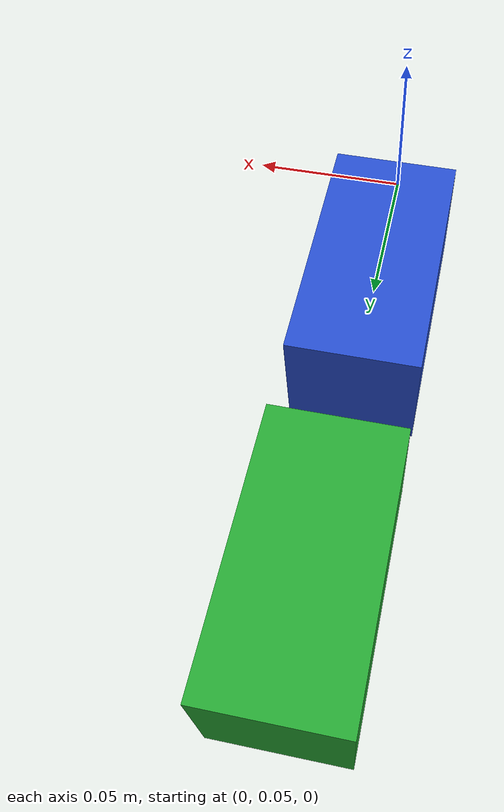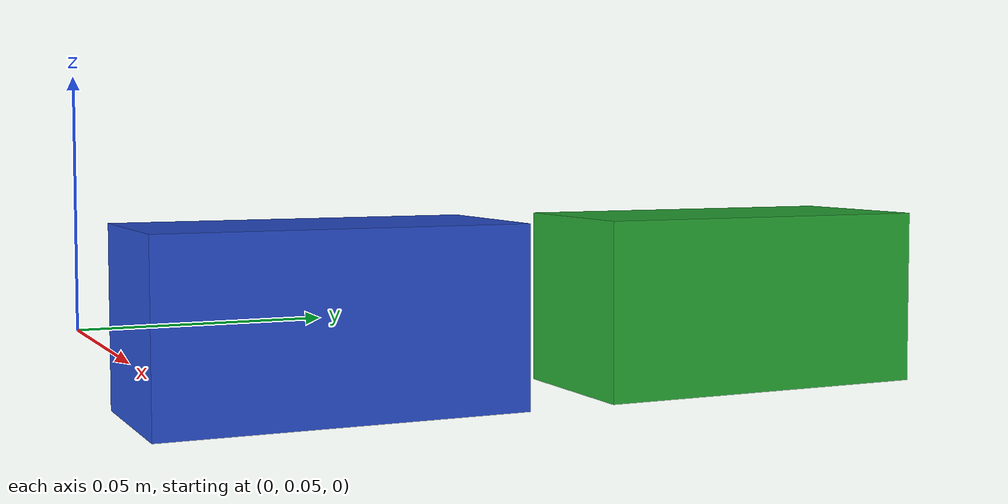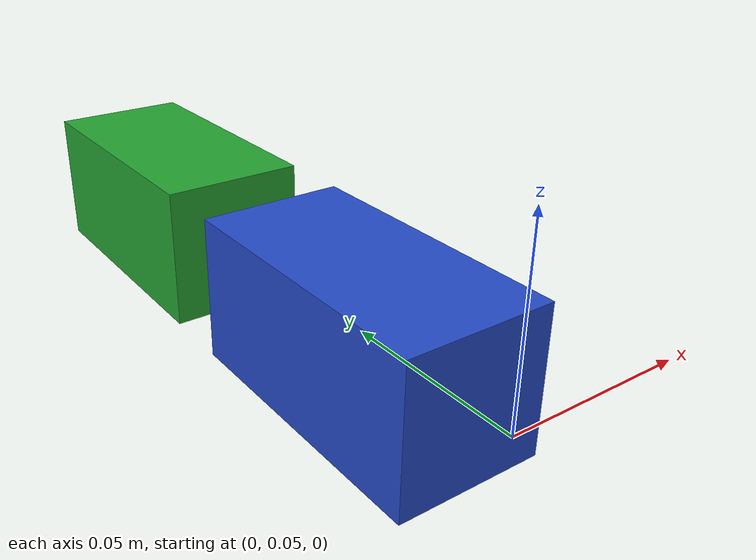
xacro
<?xml version="1.0"?>
<robot xmlns:xacro="http://www.ros.org/wiki/xacro" name="simple_box">

    <link name="object_base_link">
    </link>

    <joint name="object_base_joint1" type="fixed">
        <parent link="object_base_link"/>
        <child link="object_link1"/>
        <axis xyz="0 0 1" />
        <origin xyz="0 00.1 0" rpy="0 0 0"/>
    </joint>

   <link name="object_link1">
     <inertial>
       <origin xyz="0 0 0" />
       <mass value="1.0" />
       <inertia  ixx="1.0" ixy="0.0"  ixz="0.0"  iyy="100.0"  iyz="0.0"  izz="1.0" />
     </inertial>
     <visual>
       <origin xyz="0 0 0"/>
       <geometry>
         <box size="0.04 0.08 0.04" />
        </geometry>
     </visual>
     <collision>
       <origin xyz="0 0 0"/>
       <geometry>
         <box size="0.04 0.08 0.04" />
       </geometry>
     </collision>
   </link>

   <gazebo reference="object_link1">
     <material>Gazebo/Blue</material>
   </gazebo>

   <joint name="object_base_joint2" type="fixed">
        <parent link="object_base_link"/>
        <child link="object_link2"/>
        <axis xyz="0 0 1" />
        <origin xyz="0 0.2 0" rpy="0 0 0"/>
    </joint>

   <link name="object_link2">
     <inertial>
       <origin xyz="0 0 0" />
       <mass value="1.0" />
       <inertia  ixx="1.0" ixy="0.0"  ixz="0.0"  iyy="100.0"  iyz="0.0"  izz="1.0" />
     </inertial>
     <visual>
       <origin xyz="0 0 0"/>
       <geometry>
         <box size="0.04 0.08 0.04" />
        </geometry>
     </visual>
     <collision>
       <origin xyz="0 0 0"/>
       <geometry>
         <box size="0.04 0.08 0.04" />
       </geometry>
     </collision>
   </link>

   <gazebo reference="object_link2">
     <material>Gazebo/Green</material>
   </gazebo>

 </robot>
